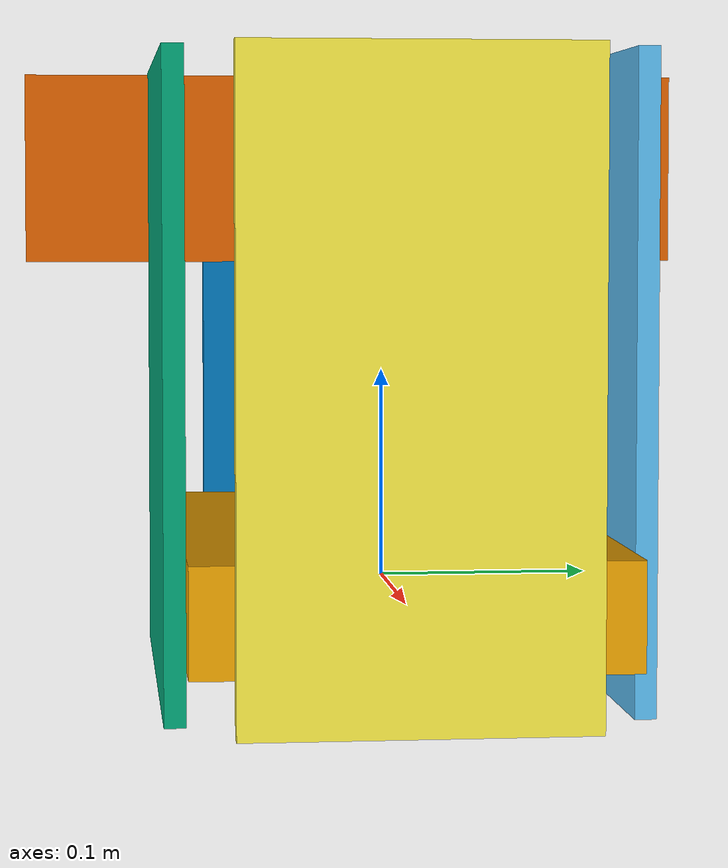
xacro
<?xml version="1.0"?>
<robot name="racecar" xmlns:xacro="http://www.ros.org/wiki/xacro">

  <xacro:arg name="robot_tf_prefix" default=""/>

  <link name="$(arg robot_tf_prefix)platform">
    <inertial>
      <origin xyz="0 0 -0.025" rpy="0 0 0" />
      <mass value="1000.0" />
      <inertia ixx="1000.0"    ixy="0.0"       ixz="0.0"
                             iyy="1000.0"      iyz="0.0"
                                             izz="1000.0" />
    </inertial>
    <visual>
      <origin xyz="0 0 0" rpy="0 0 0" />
      <geometry>
        <box size="0.3 0.2 0.05" />
      </geometry>
    </visual>
    <collision>
      <origin xyz="0 0 0" rpy="0 0 0" />
      <geometry>
        <cylinder length="0.1" radius="0.2" />
      </geometry>
      <surface>
        <friction>
          <ode>
              <mu>100</mu>
              <mu2>100</mu2>
          </ode>
        </friction>
      </surface>
    </collision>
  </link>

  <link name="link_1">
    <visual>
      <origin xyz="0 0 0" rpy="0 0 0" />
      <geometry>
        <box size="0.25 0.01 0.3" />
      </geometry>
    </visual>
    <collision>
      <origin xyz="0 0 0" rpy="0 0 0" />
      <geometry>
        <box size="0.25 0.01 0.3" />
      </geometry>
      <surface>
        <friction>
          <ode>
              <mu>100</mu>
              <mu2>100</mu2>
          </ode>
        </friction>
      </surface>
    </collision>
  </link>

  <joint name="joint_1" type="fixed">
    <origin xyz="0 0.105 0.1" rpy="0 0 0" />
    <parent link="$(arg robot_tf_prefix)platform"/>
    <child link="link_1" />
  </joint>

  <link name="link_2">
    <visual>
      <origin xyz="0 0 0" rpy="0 0 0" />
      <geometry>
        <box size="0.25 0.01 0.3" />
      </geometry>
    </visual>
    <collision>
      <origin xyz="0 0 0" rpy="0 0 0" />
      <geometry>
        <box size="0.25 0.01 0.3" />
      </geometry>
      <surface>
        <friction>
          <ode>
              <mu>100</mu>
              <mu2>100</mu2>
          </ode>
        </friction>
      </surface>
    </collision>
  </link>

  <joint name="joint_2" type="fixed">
    <origin xyz="0 -0.105 0.1" rpy="0 0 0" />
    <parent link="$(arg robot_tf_prefix)platform"/>
    <child link="link_2" />
  </joint>

  <link name="link_3">
    <visual>
      <origin xyz="0 0 0" rpy="0 0 0" />
      <geometry>
        <box size="0.01 0.16 0.3" />
      </geometry>
    </visual>
    <collision>
      <origin xyz="0 0 0" rpy="0 0 0" />
      <geometry>
        <box size="0.01 0.16 0.3" />
      </geometry>
      <surface>
        <friction>
          <ode>
              <mu>100</mu>
              <mu2>100</mu2>
          </ode>
        </friction>
      </surface>
    </collision>
  </link>

  <joint name="joint_3" type="fixed">
    <origin xyz="0.155 0 0.1" rpy="0 0 0" />
    <parent link="$(arg robot_tf_prefix)platform"/>
    <child link="link_3" />
  </joint>

  <link name="link_4">
    <visual>
      <origin xyz="0 0 0" rpy="0 0 0" />
      <geometry>
        <box size="0.01 0.16 0.2" />
      </geometry>
    </visual>
    <collision>
      <origin xyz="0 0 0" rpy="0 0 0" />
      <geometry>
        <box size="0.01 0.16 0.2" />
      </geometry>
      <surface>
        <friction>
          <ode>
              <mu>100</mu>
              <mu2>100</mu2>
          </ode>
        </friction>
      </surface>
    </collision>
  </link>

  <joint name="joint_4" type="fixed">
    <origin xyz="-0.155 0 0.05" rpy="0 0 0" />
    <parent link="$(arg robot_tf_prefix)platform"/>
    <child link="link_4" />
  </joint>

  <link name="link_5">
    <visual>
      <origin xyz="0 0 0" rpy="0 0 0" />
      <geometry>
        <box size="0.01 0.35 0.1" />
      </geometry>
    </visual>
    <collision>
      <origin xyz="0 0 0" rpy="0 0 0" />
      <geometry>
        <box size="0.01 0.35 0.1" />
      </geometry>
      <surface>
        <friction>
          <ode>
              <mu>100</mu>
              <mu2>100</mu2>
          </ode>
        </friction>
      </surface>
    </collision>
  </link>

  <joint name="joint_5" type="fixed">
    <origin xyz="-0.155 0 0.2" rpy="0 0 0" />
    <parent link="$(arg robot_tf_prefix)platform"/>
    <child link="link_5" />
  </joint>

  <gazebo>
    <!-- Planar Move Plugin -->
    <plugin name="object_controller" filename="libgazebo_ros_planar_move.so">
      <commandTopic>cmd_vel</commandTopic>
      <odometryTopic>deprecated_odom</odometryTopic>
      <odometryFrame>$(arg robot_tf_prefix)deprecated_odom</odometryFrame>
      <odometryRate>10.0</odometryRate>
      <robotBaseFrame>$(arg robot_tf_prefix)platform</robotBaseFrame>
    </plugin>
  </gazebo>

</robot>
